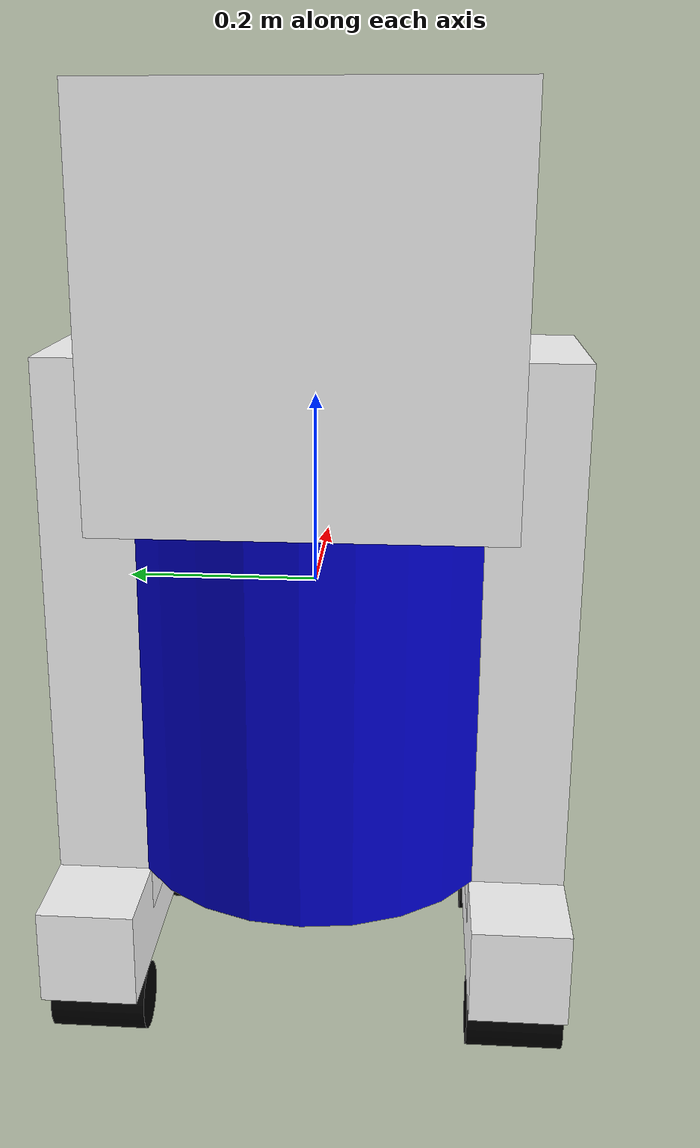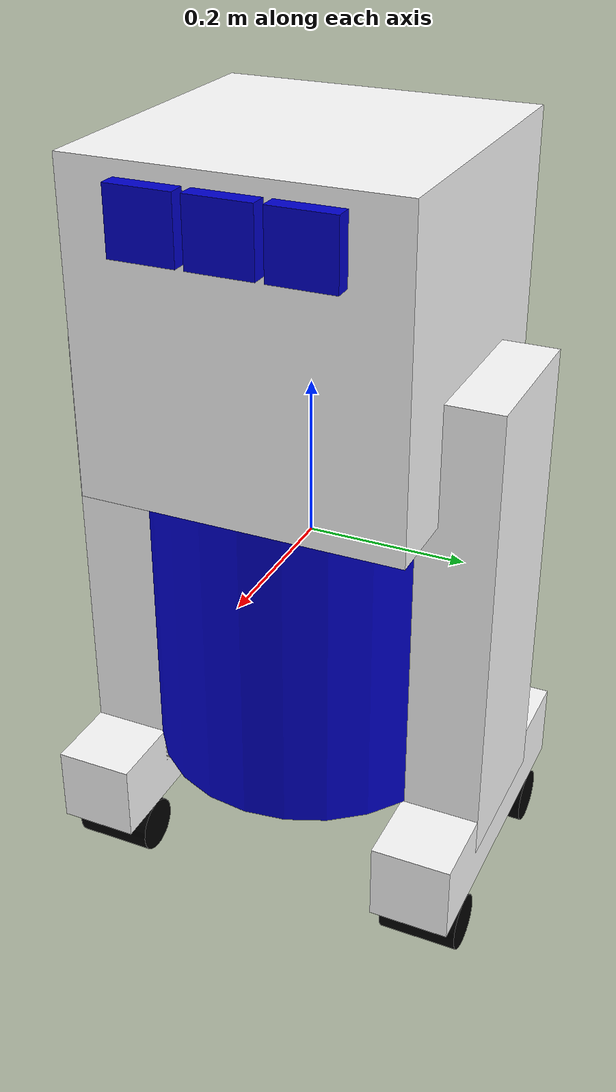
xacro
<?xml version="1.0"?>
<robot name="roscontrol" xmlns:xacro="http://ros.org/wiki/xacro">

  <xacro:property name="width" value="0.2" />
  <xacro:property name="leglen" value="0.6" />
  <xacro:property name="polelen" value="0.2" />
  <xacro:property name="bodylen" value="0.6" />
  <xacro:property name="baselen" value="0.4" />
  <xacro:property name="wheeldiam" value="0.07" />
  <xacro:property name="pi" value="3.1415" />
  <xacro:property name="camera_link" value="0.08" />

  <material name="blue">
    <color rgba="0 0 0.8 1"/>
  </material>

  <material name="black">
    <color rgba="0 0 0 1"/>
  </material>

  <material name="white">
    <color rgba="1 1 1 1"/>
  </material>

  <xacro:macro name="default_inertial" params="mass">
    <inertial>
      <mass value="${mass}" />
      <inertia ixx="1.0" ixy="0.0" ixz="0.0" iyy="1.0" iyz="0.0" izz="1.0" />
    </inertial>
  </xacro:macro>

  <link name="base_link">
    <visual>
      <geometry>
        <cylinder radius="${width}" length="${bodylen}"/>
      </geometry>
      <material name="blue"/>
    </visual>
    <collision>
      <geometry>
        <cylinder radius="${width}" length="${bodylen}"/>
      </geometry>
    </collision>
    <xacro:default_inertial mass="10"/>
  </link>

  <xacro:macro name="wheel" params="prefix suffix reflect">

    <link name="${prefix}_${suffix}_wheel">
      <visual>
        <origin xyz="0 0 0" rpy="${pi/2} 0 0" />
        <geometry>
          <cylinder radius="${wheeldiam/2}" length="0.1"/>
        </geometry>
        <material name="black"/>
      </visual>
      <collision>
        <origin xyz="0 0 0" rpy="${pi/2} 0 0" />
        <geometry>
          <cylinder radius="${wheeldiam/2}" length="0.1"/>
        </geometry>
      </collision>
      <xacro:default_inertial mass="1"/>
    </link>
    <joint name="${prefix}_${suffix}_wheel_joint" type="continuous">
      <axis xyz="0 1 0" rpy="0 0 0" />
      <parent link="${prefix}_base"/>
      <child link="${prefix}_${suffix}_wheel"/>
      <origin xyz="${baselen*reflect/3} 0 -${wheeldiam/2+.05}" rpy="0 0 0"/>
    </joint>

    <!-- This block provides the simulator (Gazebo) with information on a few additional
    physical properties. See http://gazebosim.org/tutorials/?tut=ros_urdf for more-->
    <gazebo reference="${prefix}_${suffix}_wheel">
      <mu1 value="200.0"/>
      <mu2 value="100.0"/>
      <kp value="10000000.0" />
      <kd value="1.0" />
      <material>Gazebo/Grey</material>
    </gazebo>

    <!-- This block connects the wheel joint to an actuator (motor), which informs both
    simulation and visualization of the robot -->
    <transmission name="${prefix}_${suffix}_wheel_trans">
      <type>transmission_interface/SimpleTransmission</type>
      <actuator name="${prefix}_${suffix}_wheel_motor">
        <mechanicalReduction>1</mechanicalReduction>
      </actuator>
      <joint name="${prefix}_${suffix}_wheel_joint">
        <hardwareInterface>VelocityJointInterface</hardwareInterface>
      </joint>
    </transmission>

  </xacro:macro>

  <xacro:macro name="leg" params="prefix reflect">
    <link name="${prefix}_leg">
      <visual>
        <geometry>
          <box size="${leglen} 0.1 0.2"/>
        </geometry>
        <origin xyz="0 0 -${leglen/2}" rpy="0 ${pi/2} 0"/>
        <material name="white"/>
      </visual>
      <collision>
        <geometry>
          <box size="${leglen} 0.1 0.2"/>
        </geometry>
        <origin xyz="0 0 -${leglen/2}" rpy="0 ${pi/2} 0"/>
      </collision>
      <xacro:default_inertial mass="10"/>
    </link>

    <joint name="base_to_${prefix}_leg" type="fixed">
      <parent link="base_link"/>
      <child link="${prefix}_leg"/>
      <origin xyz="0 ${reflect*(width+.02)} 0.25" />
    </joint>

    <link name="${prefix}_base">
      <visual>
        <geometry>
          <box size="${baselen} 0.1 0.1"/>
        </geometry>
        <material name="white"/>
      </visual>
      <collision>
        <geometry>
          <box size="${baselen} 0.1 0.1"/>
        </geometry>
      </collision>
      <xacro:default_inertial mass="10"/>
    </link>

    <joint name="${prefix}_base_joint" type="fixed">
      <parent link="${prefix}_leg"/>
      <child link="${prefix}_base"/>
      <origin xyz="0 0 ${-leglen}" />
    </joint>
    <xacro:wheel prefix="${prefix}" suffix="front" reflect="1"/>
    <xacro:wheel prefix="${prefix}" suffix="back" reflect="-1"/>
  </xacro:macro>
  <xacro:leg prefix="right" reflect="-1" />
  <xacro:leg prefix="left" reflect="1" />

  <link name="head">
    <visual>
      <geometry>
      	<box size="${2*width} ${2*width} ${2*width}"/>
      </geometry>
      <material name="white"/>
    </visual>
    <collision>
      <geometry>
        <box size="${width+0.1} ${2*width} ${2*width}"/>
      </geometry>
    </collision>
    <xacro:default_inertial mass="2"/>
  </link>

  <joint name="head_swivel" type="continuous">
    <parent link="base_link"/>
    <child link="head"/>
    <axis xyz="0 0 1"/>
    <origin xyz="0 0 ${bodylen/2}"/>
    <limit effort="30" velocity="1.0"/>
    <dynamics damping="0.0" friction="0.0"/>
  </joint>

  <!-- This block connects the head_swivel joint to an actuator (motor), which informs both
  simulation and visualization of the robot -->
  <transmission name="head_swivel_trans">
    <type>transmission_interface/SimpleTransmission</type>
    <actuator name="$head_swivel_motor">
      <mechanicalReduction>1</mechanicalReduction>
    </actuator>
    <joint name="head_swivel">
      <hardwareInterface>PositionJointInterface</hardwareInterface>
    </joint>
  </transmission>

  <link name="left_box">
    <visual>
      <geometry>
        <box size="0.08 0.08 0.08"/>
      </geometry>
      <material name="blue"/>
    </visual>
     <collision>
      <geometry>
        <box size="0.08 0.08 0.08"/>
      </geometry>
    </collision>
    <xacro:default_inertial mass="1"/>
  </link>

  <link name="right_box">
    <visual>
      <geometry>
        <box size="0.08 0.08 0.08"/>
      </geometry>
      <material name="blue"/>
    </visual>
     <collision>
      <geometry>
        <box size="0.08 0.08 0.08"/>
      </geometry>
    </collision>
    <xacro:default_inertial mass="1"/>
  </link>

  <link name="centre_box">
    <visual>
      <geometry>
        <box size="0.08 0.08 0.08"/>
      </geometry>
      <material name="blue"/>
    </visual>
     <collision>
      <geometry>
        <box size="0.08 0.08 0.08"/>
      </geometry>
    </collision>
    <xacro:default_inertial mass="1"/>
  </link>

  <joint name="left_box_joint" type="fixed">
    <parent link="head"/>
    <child link="left_box"/>
    <origin xyz="0.1814 -0.09 0.1414"/>
  </joint>

   <joint name="right_box_joint" type="fixed">
    <parent link="head"/>
    <child link="right_box"/>
    <origin xyz="0.1814 0.09 0.1414"/>
  </joint>

  <joint name="centre_box_joint" type="fixed">
    <parent link="head"/>
    <child link="centre_box"/>
    <origin xyz="0.1814 0 0.1414"/>
  </joint>

  <!-- Gazebo plugin for ROS Control -->
  <gazebo>
    <plugin name="gazebo_ros_control" filename="libgazebo_ros_control.so">
      <robotNamespace>/</robotNamespace>
      <legacynodens>true</legacynodens>
      <legacyModeNS>true</legacyModeNS>
    </plugin>
  </gazebo>

   <gazebo reference="head" >
    <sensor type="multicamera" name="multi_camera">
      <update_rate>10.0</update_rate>
        <camera name="cam1">
          <horizontal_fov>1.3962634</horizontal_fov>
        <image>
          <width>800</width>
          <height>800</height>
          <format>R8G8B8</format>
        </image>
        <clip>
          <near>0.02</near>
          <far>300</far>
        </clip>
        <noise>
          <type>gaussian</type>
          <mean>0.0</mean>
          <stddev>0.007</stddev>
        </noise>
        </camera>
        <camera name="cam2">
           <pose>0 -0.07 0 0 0 0</pose>
        <horizontal_fov>1.3962634</horizontal_fov>
        <image>
          <width>800</width>
          <height>800</height>
          <format>R8G8B8</format>
        </image>
        <clip>
          <near>0.02</near>
          <far>300</far>
        </clip>
        <noise>
          <type>gaussian</type>
          <mean>0.0</mean>
          <stddev>0.007</stddev>
        </noise>
        </camera>
        <camera name="cam3">
          <pose>0 0.07 0 0 0 0</pose>
         <horizontal_fov>1.3962634</horizontal_fov>
        <image>
          <width>800</width>
          <height>800</height>
          <format>R8G8B8</format>
        </image>
        <clip>
          <near>0.02</near>
          <far>300</far>
        </clip>
        <noise>
          <type>gaussian</type>
          <mean>0.0</mean>
          <stddev>0.007</stddev>
        </noise>
        </camera>
        <plugin name="multi_camera_controller" filename="libcamera_async.so">
          <alwaysOn>true</alwaysOn>
          <updateRate>0.0</updateRate>
          <cameraName>multi/camera</cameraName>
          <imageTopicName>image_raw</imageTopicName>
          <cameraInfoTopicName>camera_info</cameraInfoTopicName>
          <frameName>cam1,cam2,cam3</frameName>
          <cameraSuffixes>_1,_2,_3</cameraSuffixes>
	  <hackBaseline>0.07</hackBaseline>
          <distortionK1>0.0</distortionK1>
          <distortionK2>0.0</distortionK2>
          <distortionK3>0.0</distortionK3>
          <distortionT1>0.0</distortionT1>
          <distortionT2>0.0</distortionT2>
        </plugin>
      </sensor>
   </gazebo>

</robot>
